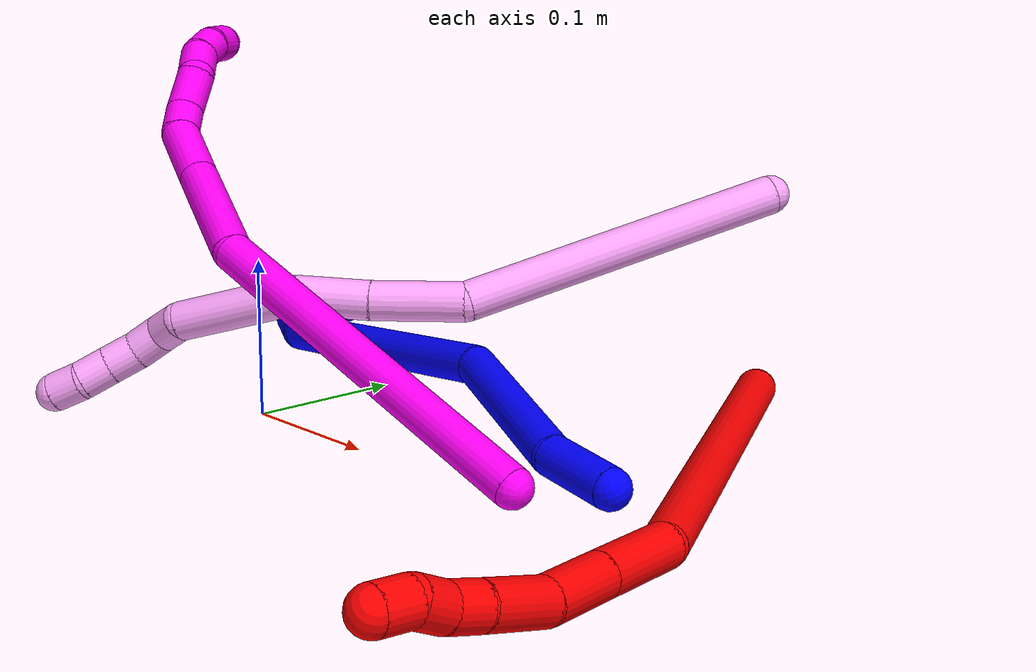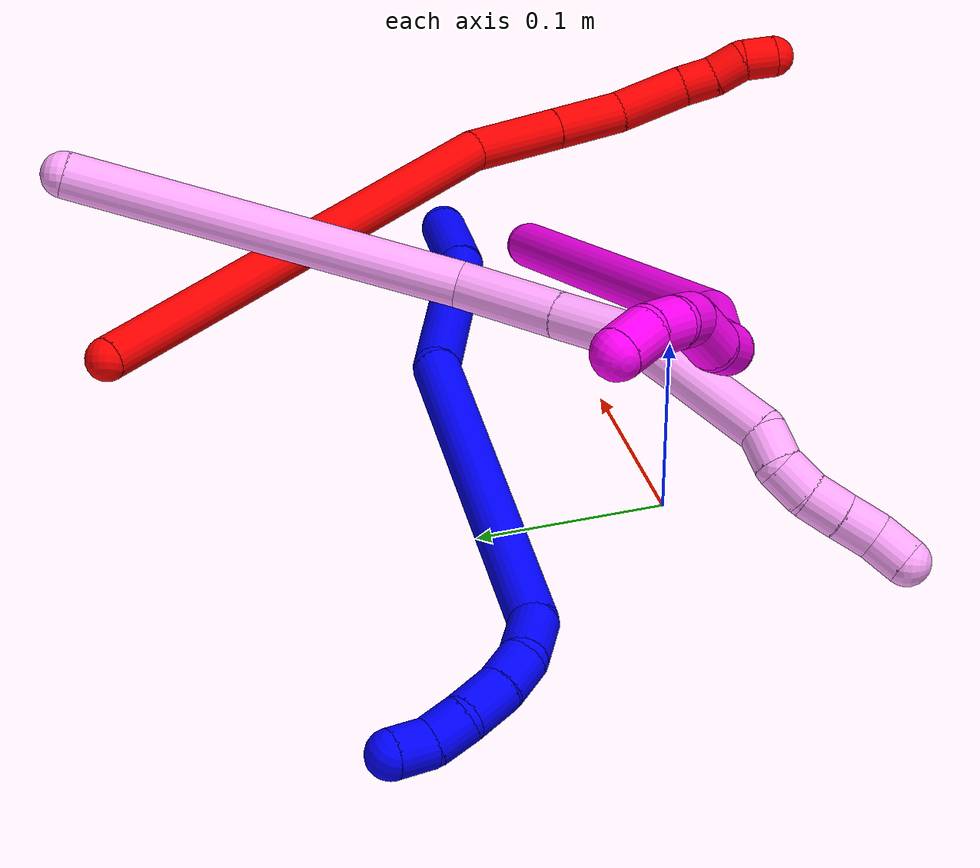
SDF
<sdf version="1.7">
 <world name="default">
  <model name="1">
   <static>0</static>
   <link name="1">
    <collision name="collision-cylinder-e_1_1_4">
     <pose>-0.024528 0.004065 0.005872 -0.605521 -1.28746 0.460457</pose>
     <geometry><cylinder><radius>0.0125</radius><length>0.051093</length></cylinder></geometry>
     <surface>
      <friction><ode><mu>1.16</mu><mu2>1.16</mu2><slip1>0</slip1><slip2>0</slip2></ode></friction>
      <contact><ode><kp>1e+06</kp><kd>1</kd><max_vel>0</max_vel><min_depth>0.001</min_depth></ode></contact>
     </surface>
    </collision>
    <visual name="visual-cylinder-e_1_1_4">
     <pose>-0.024528 0.004065 0.005872 -0.605521 -1.28746 0.460457</pose>
     <geometry><cylinder><radius>0.0125</radius><length>0.051093</length></cylinder></geometry>
     <material><ambient>0 0 1 1</ambient></material>
    </visual>
    <collision name="collision-cylinder-e_2_4_5">
     <pose>-0.107501 0.037127 0.022198 -1.22479 -1.08546 0.801551</pose>
     <geometry><cylinder><radius>0.0125</radius><length>0.13215</length></cylinder></geometry>
     <surface>
      <friction><ode><mu>1.16</mu><mu2>1.16</mu2><slip1>0</slip1><slip2>0</slip2></ode></friction>
      <contact><ode><kp>1e+06</kp><kd>1</kd><max_vel>0</max_vel><min_depth>0.001</min_depth></ode></contact>
     </surface>
    </collision>
    <visual name="visual-cylinder-e_2_4_5">
     <pose>-0.107501 0.037127 0.022198 -1.22479 -1.08546 0.801551</pose>
     <geometry><cylinder><radius>0.0125</radius><length>0.13215</length></cylinder></geometry>
     <material><ambient>0 0 1 1</ambient></material>
    </visual>
    <collision name="collision-cylinder-e_3_5_6">
     <pose>-0.264787 0.071757 0.03803 -0.80844 -1.49217 0.753068</pose>
     <geometry><cylinder><radius>0.0125</radius><length>0.198295</length></cylinder></geometry>
     <surface>
      <friction><ode><mu>1.16</mu><mu2>1.16</mu2><slip1>0</slip1><slip2>0</slip2></ode></friction>
      <contact><ode><kp>1e+06</kp><kd>1</kd><max_vel>0</max_vel><min_depth>0.001</min_depth></ode></contact>
     </surface>
    </collision>
    <visual name="visual-cylinder-e_3_5_6">
     <pose>-0.264787 0.071757 0.03803 -0.80844 -1.49217 0.753068</pose>
     <geometry><cylinder><radius>0.0125</radius><length>0.198295</length></cylinder></geometry>
     <material><ambient>0 0 1 1</ambient></material>
    </visual>
    <collision name="collision-cylinder-e_4_6_7">
     <pose>-0.377422 0.085374 0.044812 -1.39671 -1.03943 0.895587</pose>
     <geometry><cylinder><radius>0.0125</radius><length>0.032001</length></cylinder></geometry>
     <surface>
      <friction><ode><mu>1.16</mu><mu2>1.16</mu2><slip1>0</slip1><slip2>0</slip2></ode></friction>
      <contact><ode><kp>1e+06</kp><kd>1</kd><max_vel>0</max_vel><min_depth>0.001</min_depth></ode></contact>
     </surface>
    </collision>
    <visual name="visual-cylinder-e_4_6_7">
     <pose>-0.377422 0.085374 0.044812 -1.39671 -1.03943 0.895587</pose>
     <geometry><cylinder><radius>0.0125</radius><length>0.032001</length></cylinder></geometry>
     <material><ambient>0 0 1 1</ambient></material>
    </visual>
    <collision name="collision-cylinder-e_5_7_8">
     <pose>-0.398178 0.100509 0.043163 -1.9744 -0.730211 1.04948</pose>
     <geometry><cylinder><radius>0.0125</radius><length>0.020873</length></cylinder></geometry>
     <surface>
      <friction><ode><mu>1.16</mu><mu2>1.16</mu2><slip1>0</slip1><slip2>0</slip2></ode></friction>
      <contact><ode><kp>1e+06</kp><kd>1</kd><max_vel>0</max_vel><min_depth>0.001</min_depth></ode></contact>
     </surface>
    </collision>
    <visual name="visual-cylinder-e_5_7_8">
     <pose>-0.398178 0.100509 0.043163 -1.9744 -0.730211 1.04948</pose>
     <geometry><cylinder><radius>0.0125</radius><length>0.020873</length></cylinder></geometry>
     <material><ambient>0 0 1 1</ambient></material>
    </visual>
    <collision name="collision-cylinder-e_6_8_9">
     <pose>-0.411932 0.117895 0.036889 -1.87557 -0.564379 0.752612</pose>
     <geometry><cylinder><radius>0.0125</radius><length>0.025399</length></cylinder></geometry>
     <surface>
      <friction><ode><mu>1.16</mu><mu2>1.16</mu2><slip1>0</slip1><slip2>0</slip2></ode></friction>
      <contact><ode><kp>1e+06</kp><kd>1</kd><max_vel>0</max_vel><min_depth>0.001</min_depth></ode></contact>
     </surface>
    </collision>
    <visual name="visual-cylinder-e_6_8_9">
     <pose>-0.411932 0.117895 0.036889 -1.87557 -0.564379 0.752612</pose>
     <geometry><cylinder><radius>0.0125</radius><length>0.025399</length></cylinder></geometry>
     <material><ambient>0 0 1 1</ambient></material>
    </visual>
    <collision name="collision-cylinder-e_7_9_10">
     <pose>-0.422207 0.136167 0.02875 -2.12013 -0.353987 0.617991</pose>
     <geometry><cylinder><radius>0.0125</radius><length>0.020089</length></cylinder></geometry>
     <surface>
      <friction><ode><mu>1.16</mu><mu2>1.16</mu2><slip1>0</slip1><slip2>0</slip2></ode></friction>
      <contact><ode><kp>1e+06</kp><kd>1</kd><max_vel>0</max_vel><min_depth>0.001</min_depth></ode></contact>
     </surface>
    </collision>
    <visual name="visual-cylinder-e_7_9_10">
     <pose>-0.422207 0.136167 0.02875 -2.12013 -0.353987 0.617991</pose>
     <geometry><cylinder><radius>0.0125</radius><length>0.020089</length></cylinder></geometry>
     <material><ambient>0 0 1 1</ambient></material>
    </visual>
    <collision name="collision-cylinder-e_8_10_2">
     <pose>-0.427539 0.153822 0.021586 -1.80005 -0.185177 0.232974</pose>
     <geometry><cylinder><radius>0.0125</radius><length>0.0201</length></cylinder></geometry>
     <surface>
      <friction><ode><mu>1.16</mu><mu2>1.16</mu2><slip1>0</slip1><slip2>0</slip2></ode></friction>
      <contact><ode><kp>1e+06</kp><kd>1</kd><max_vel>0</max_vel><min_depth>0.001</min_depth></ode></contact>
     </surface>
    </collision>
    <visual name="visual-cylinder-e_8_10_2">
     <pose>-0.427539 0.153822 0.021586 -1.80005 -0.185177 0.232974</pose>
     <geometry><cylinder><radius>0.0125</radius><length>0.0201</length></cylinder></geometry>
     <material><ambient>0 0 1 1</ambient></material>
    </visual>
    <collision name="collision-sphere-2">
     <pose>-0.429389 0.163442 0.019341 0 -0 0</pose>
     <geometry><sphere><radius>0.0125</radius></sphere></geometry>
     <surface>
      <friction><ode><mu>1.16</mu><mu2>1.16</mu2><slip1>0</slip1><slip2>0</slip2></ode></friction>
      <contact><ode><kp>1e+06</kp><kd>1</kd><max_vel>0</max_vel><min_depth>0.001</min_depth></ode></contact>
     </surface>
    </collision>
    <visual name="visual-sphere-2">
     <pose>-0.429389 0.163442 0.019341 0 -0 0</pose>
     <geometry><sphere><radius>0.0125</radius></sphere></geometry>
     <material><ambient>0 0 1 1</ambient></material>
    </visual>
    <collision name="collision-sphere-10">
     <pose>-0.425688 0.144202 0.023831 0 -0 0</pose>
     <geometry><sphere><radius>0.0125</radius></sphere></geometry>
     <surface>
      <friction><ode><mu>1.16</mu><mu2>1.16</mu2><slip1>0</slip1><slip2>0</slip2></ode></friction>
      <contact><ode><kp>1e+06</kp><kd>1</kd><max_vel>0</max_vel><min_depth>0.001</min_depth></ode></contact>
     </surface>
    </collision>
    <visual name="visual-sphere-10">
     <pose>-0.425688 0.144202 0.023831 0 -0 0</pose>
     <geometry><sphere><radius>0.0125</radius></sphere></geometry>
     <material><ambient>0 0 1 1</ambient></material>
    </visual>
    <collision name="collision-sphere-9">
     <pose>-0.418725 0.128131 0.033669 0 -0 0</pose>
     <geometry><sphere><radius>0.0125</radius></sphere></geometry>
     <surface>
      <friction><ode><mu>1.16</mu><mu2>1.16</mu2><slip1>0</slip1><slip2>0</slip2></ode></friction>
      <contact><ode><kp>1e+06</kp><kd>1</kd><max_vel>0</max_vel><min_depth>0.001</min_depth></ode></contact>
     </surface>
    </collision>
    <visual name="visual-sphere-9">
     <pose>-0.418725 0.128131 0.033669 0 -0 0</pose>
     <geometry><sphere><radius>0.0125</radius></sphere></geometry>
     <material><ambient>0 0 1 1</ambient></material>
    </visual>
    <collision name="collision-sphere-4">
     <pose>-0.049056 0.00813 0.011744 0 -0 0</pose>
     <geometry><sphere><radius>0.0125</radius></sphere></geometry>
     <surface>
      <friction><ode><mu>1.16</mu><mu2>1.16</mu2><slip1>0</slip1><slip2>0</slip2></ode></friction>
      <contact><ode><kp>1e+06</kp><kd>1</kd><max_vel>0</max_vel><min_depth>0.001</min_depth></ode></contact>
     </surface>
    </collision>
    <visual name="visual-sphere-4">
     <pose>-0.049056 0.00813 0.011744 0 -0 0</pose>
     <geometry><sphere><radius>0.0125</radius></sphere></geometry>
     <material><ambient>0 0 1 1</ambient></material>
    </visual>
    <collision name="collision-sphere-1">
     <geometry><sphere><radius>0.0125</radius></sphere></geometry>
     <surface>
      <friction><ode><mu>1.16</mu><mu2>1.16</mu2><slip1>0</slip1><slip2>0</slip2></ode></friction>
      <contact><ode><kp>1e+06</kp><kd>1</kd><max_vel>0</max_vel><min_depth>0.001</min_depth></ode></contact>
     </surface>
    </collision>
    <visual name="visual-sphere-1">
     <geometry><sphere><radius>0.0125</radius></sphere></geometry>
     <material><ambient>0 0 1 1</ambient></material>
    </visual>
    <collision name="collision-sphere-8">
     <pose>-0.405139 0.10766 0.040109 0 -0 0</pose>
     <geometry><sphere><radius>0.0125</radius></sphere></geometry>
     <surface>
      <friction><ode><mu>1.16</mu><mu2>1.16</mu2><slip1>0</slip1><slip2>0</slip2></ode></friction>
      <contact><ode><kp>1e+06</kp><kd>1</kd><max_vel>0</max_vel><min_depth>0.001</min_depth></ode></contact>
     </surface>
    </collision>
    <visual name="visual-sphere-8">
     <pose>-0.405139 0.10766 0.040109 0 -0 0</pose>
     <geometry><sphere><radius>0.0125</radius></sphere></geometry>
     <material><ambient>0 0 1 1</ambient></material>
    </visual>
    <collision name="collision-sphere-5">
     <pose>-0.165945 0.066125 0.032652 0 -0 0</pose>
     <geometry><sphere><radius>0.0125</radius></sphere></geometry>
     <surface>
      <friction><ode><mu>1.16</mu><mu2>1.16</mu2><slip1>0</slip1><slip2>0</slip2></ode></friction>
      <contact><ode><kp>1e+06</kp><kd>1</kd><max_vel>0</max_vel><min_depth>0.001</min_depth></ode></contact>
     </surface>
    </collision>
    <visual name="visual-sphere-5">
     <pose>-0.165945 0.066125 0.032652 0 -0 0</pose>
     <geometry><sphere><radius>0.0125</radius></sphere></geometry>
     <material><ambient>0 0 1 1</ambient></material>
    </visual>
    <collision name="collision-sphere-6">
     <pose>-0.363628 0.077388 0.043408 0 -0 0</pose>
     <geometry><sphere><radius>0.0125</radius></sphere></geometry>
     <surface>
      <friction><ode><mu>1.16</mu><mu2>1.16</mu2><slip1>0</slip1><slip2>0</slip2></ode></friction>
      <contact><ode><kp>1e+06</kp><kd>1</kd><max_vel>0</max_vel><min_depth>0.001</min_depth></ode></contact>
     </surface>
    </collision>
    <visual name="visual-sphere-6">
     <pose>-0.363628 0.077388 0.043408 0 -0 0</pose>
     <geometry><sphere><radius>0.0125</radius></sphere></geometry>
     <material><ambient>0 0 1 1</ambient></material>
    </visual>
    <collision name="collision-sphere-7">
     <pose>-0.391216 0.093359 0.046216 0 -0 0</pose>
     <geometry><sphere><radius>0.0125</radius></sphere></geometry>
     <surface>
      <friction><ode><mu>1.16</mu><mu2>1.16</mu2><slip1>0</slip1><slip2>0</slip2></ode></friction>
      <contact><ode><kp>1e+06</kp><kd>1</kd><max_vel>0</max_vel><min_depth>0.001</min_depth></ode></contact>
     </surface>
    </collision>
    <visual name="visual-sphere-7">
     <pose>-0.391216 0.093359 0.046216 0 -0 0</pose>
     <geometry><sphere><radius>0.0125</radius></sphere></geometry>
     <material><ambient>0 0 1 1</ambient></material>
    </visual>
    <inertial>
     <pose>-0.231784 0.065989 0.030116 0 -0 0</pose>
     <mass>0.5</mass>
     <inertia>
      <ixx>0.000186</ixx>
      <ixy>0</ixy>
      <ixz>0</ixz>
      <iyy>0.000957</iyy>
      <iyz>0</iyz>
      <izz>0.000717</izz>
     </inertia>
    </inertial>
   </link>
   <pose>0.273592 0.037473 0.011493 0.313706 -0.156507 -0.006843</pose>
  </model>
  <model name="2">
   <static>0</static>
   <link name="2">
    <collision name="collision-cylinder-e_1_1_4">
     <pose>0.040929 -0.117416 0.081852 0.962009 0.278521 0.146044</pose>
     <geometry><cylinder><radius>0.0125</radius><length>0.297735</length></cylinder></geometry>
     <surface>
      <friction><ode><mu>1.16</mu><mu2>1.16</mu2><slip1>0</slip1><slip2>0</slip2></ode></friction>
      <contact><ode><kp>1e+06</kp><kd>1</kd><max_vel>0</max_vel><min_depth>0.001</min_depth></ode></contact>
     </surface>
    </collision>
    <visual name="visual-cylinder-e_1_1_4">
     <pose>0.040929 -0.117416 0.081852 0.962009 0.278521 0.146044</pose>
     <geometry><cylinder><radius>0.0125</radius><length>0.297735</length></cylinder></geometry>
     <material><ambient>1 0 0 1</ambient></material>
    </visual>
    <collision name="collision-cylinder-e_2_4_5">
     <pose>0.081121 -0.260573 0.173646 1.20223 -0.02668 -0.018297</pose>
     <geometry><cylinder><radius>0.0125</radius><length>0.055209</length></cylinder></geometry>
     <surface>
      <friction><ode><mu>1.16</mu><mu2>1.16</mu2><slip1>0</slip1><slip2>0</slip2></ode></friction>
      <contact><ode><kp>1e+06</kp><kd>1</kd><max_vel>0</max_vel><min_depth>0.001</min_depth></ode></contact>
     </surface>
    </collision>
    <visual name="visual-cylinder-e_2_4_5">
     <pose>0.081121 -0.260573 0.173646 1.20223 -0.02668 -0.018297</pose>
     <geometry><cylinder><radius>0.0125</radius><length>0.055209</length></cylinder></geometry>
     <material><ambient>1 0 0 1</ambient></material>
    </visual>
    <collision name="collision-cylinder-e_3_5_6">
     <pose>0.079897 -0.306583 0.191466 1.20008 -0.022413 -0.015335</pose>
     <geometry><cylinder><radius>0.0125</radius><length>0.043501</length></cylinder></geometry>
     <surface>
      <friction><ode><mu>1.16</mu><mu2>1.16</mu2><slip1>0</slip1><slip2>0</slip2></ode></friction>
      <contact><ode><kp>1e+06</kp><kd>1</kd><max_vel>0</max_vel><min_depth>0.001</min_depth></ode></contact>
     </surface>
    </collision>
    <visual name="visual-cylinder-e_3_5_6">
     <pose>0.079897 -0.306583 0.191466 1.20008 -0.022413 -0.015335</pose>
     <geometry><cylinder><radius>0.0125</radius><length>0.043501</length></cylinder></geometry>
     <material><ambient>1 0 0 1</ambient></material>
    </visual>
    <collision name="collision-cylinder-e_4_6_7">
     <pose>0.07418 -0.345358 0.208826 1.09733 -0.246356 -0.151068</pose>
     <geometry><cylinder><radius>0.0125</radius><length>0.042885</length></cylinder></geometry>
     <surface>
      <friction><ode><mu>1.16</mu><mu2>1.16</mu2><slip1>0</slip1><slip2>0</slip2></ode></friction>
      <contact><ode><kp>1e+06</kp><kd>1</kd><max_vel>0</max_vel><min_depth>0.001</min_depth></ode></contact>
     </surface>
    </collision>
    <visual name="visual-cylinder-e_4_6_7">
     <pose>0.07418 -0.345358 0.208826 1.09733 -0.246356 -0.151068</pose>
     <geometry><cylinder><radius>0.0125</radius><length>0.042885</length></cylinder></geometry>
     <material><ambient>1 0 0 1</ambient></material>
    </visual>
    <collision name="collision-cylinder-e_5_7_8">
     <pose>0.065674 -0.372817 0.221859 1.1931 -0.328 -0.22382</pose>
     <geometry><cylinder><radius>0.0125</radius><length>0.020345</length></cylinder></geometry>
     <surface>
      <friction><ode><mu>1.16</mu><mu2>1.16</mu2><slip1>0</slip1><slip2>0</slip2></ode></friction>
      <contact><ode><kp>1e+06</kp><kd>1</kd><max_vel>0</max_vel><min_depth>0.001</min_depth></ode></contact>
     </surface>
    </collision>
    <visual name="visual-cylinder-e_5_7_8">
     <pose>0.065674 -0.372817 0.221859 1.1931 -0.328 -0.22382</pose>
     <geometry><cylinder><radius>0.0125</radius><length>0.020345</length></cylinder></geometry>
     <material><ambient>1 0 0 1</ambient></material>
    </visual>
    <collision name="collision-cylinder-e_6_8_9">
     <pose>0.058551 -0.389397 0.23069 0.965441 -0.393009 -0.207906</pose>
     <geometry><cylinder><radius>0.0125</radius><length>0.020087</length></cylinder></geometry>
     <surface>
      <friction><ode><mu>1.16</mu><mu2>1.16</mu2><slip1>0</slip1><slip2>0</slip2></ode></friction>
      <contact><ode><kp>1e+06</kp><kd>1</kd><max_vel>0</max_vel><min_depth>0.001</min_depth></ode></contact>
     </surface>
    </collision>
    <visual name="visual-cylinder-e_6_8_9">
     <pose>0.058551 -0.389397 0.23069 0.965441 -0.393009 -0.207906</pose>
     <geometry><cylinder><radius>0.0125</radius><length>0.020087</length></cylinder></geometry>
     <material><ambient>1 0 0 1</ambient></material>
    </visual>
    <collision name="collision-cylinder-e_7_9_2">
     <pose>0.052595 -0.406689 0.238114 1.35238 -0.209983 -0.168707</pose>
     <geometry><cylinder><radius>0.0125</radius><length>0.020239</length></cylinder></geometry>
     <surface>
      <friction><ode><mu>1.16</mu><mu2>1.16</mu2><slip1>0</slip1><slip2>0</slip2></ode></friction>
      <contact><ode><kp>1e+06</kp><kd>1</kd><max_vel>0</max_vel><min_depth>0.001</min_depth></ode></contact>
     </surface>
    </collision>
    <visual name="visual-cylinder-e_7_9_2">
     <pose>0.052595 -0.406689 0.238114 1.35238 -0.209983 -0.168707</pose>
     <geometry><cylinder><radius>0.0125</radius><length>0.020239</length></cylinder></geometry>
     <material><ambient>1 0 0 1</ambient></material>
    </visual>
    <collision name="collision-sphere-2">
     <pose>0.050486 -0.416351 0.240258 0 -0 0</pose>
     <geometry><sphere><radius>0.0125</radius></sphere></geometry>
     <surface>
      <friction><ode><mu>1.16</mu><mu2>1.16</mu2><slip1>0</slip1><slip2>0</slip2></ode></friction>
      <contact><ode><kp>1e+06</kp><kd>1</kd><max_vel>0</max_vel><min_depth>0.001</min_depth></ode></contact>
     </surface>
    </collision>
    <visual name="visual-sphere-2">
     <pose>0.050486 -0.416351 0.240258 0 -0 0</pose>
     <geometry><sphere><radius>0.0125</radius></sphere></geometry>
     <material><ambient>1 0 0 1</ambient></material>
    </visual>
    <collision name="collision-sphere-9">
     <pose>0.054704 -0.397027 0.235969 0 -0 0</pose>
     <geometry><sphere><radius>0.0125</radius></sphere></geometry>
     <surface>
      <friction><ode><mu>1.16</mu><mu2>1.16</mu2><slip1>0</slip1><slip2>0</slip2></ode></friction>
      <contact><ode><kp>1e+06</kp><kd>1</kd><max_vel>0</max_vel><min_depth>0.001</min_depth></ode></contact>
     </surface>
    </collision>
    <visual name="visual-sphere-9">
     <pose>0.054704 -0.397027 0.235969 0 -0 0</pose>
     <geometry><sphere><radius>0.0125</radius></sphere></geometry>
     <material><ambient>1 0 0 1</ambient></material>
    </visual>
    <collision name="collision-sphere-4">
     <pose>0.081857 -0.234832 0.163705 0 -0 0</pose>
     <geometry><sphere><radius>0.0125</radius></sphere></geometry>
     <surface>
      <friction><ode><mu>1.16</mu><mu2>1.16</mu2><slip1>0</slip1><slip2>0</slip2></ode></friction>
      <contact><ode><kp>1e+06</kp><kd>1</kd><max_vel>0</max_vel><min_depth>0.001</min_depth></ode></contact>
     </surface>
    </collision>
    <visual name="visual-sphere-4">
     <pose>0.081857 -0.234832 0.163705 0 -0 0</pose>
     <geometry><sphere><radius>0.0125</radius></sphere></geometry>
     <material><ambient>1 0 0 1</ambient></material>
    </visual>
    <collision name="collision-sphere-1">
     <geometry><sphere><radius>0.0125</radius></sphere></geometry>
     <surface>
      <friction><ode><mu>1.16</mu><mu2>1.16</mu2><slip1>0</slip1><slip2>0</slip2></ode></friction>
      <contact><ode><kp>1e+06</kp><kd>1</kd><max_vel>0</max_vel><min_depth>0.001</min_depth></ode></contact>
     </surface>
    </collision>
    <visual name="visual-sphere-1">
     <geometry><sphere><radius>0.0125</radius></sphere></geometry>
     <material><ambient>1 0 0 1</ambient></material>
    </visual>
    <collision name="collision-sphere-8">
     <pose>0.062397 -0.381768 0.22541 0 -0 0</pose>
     <geometry><sphere><radius>0.0125</radius></sphere></geometry>
     <surface>
      <friction><ode><mu>1.16</mu><mu2>1.16</mu2><slip1>0</slip1><slip2>0</slip2></ode></friction>
      <contact><ode><kp>1e+06</kp><kd>1</kd><max_vel>0</max_vel><min_depth>0.001</min_depth></ode></contact>
     </surface>
    </collision>
    <visual name="visual-sphere-8">
     <pose>0.062397 -0.381768 0.22541 0 -0 0</pose>
     <geometry><sphere><radius>0.0125</radius></sphere></geometry>
     <material><ambient>1 0 0 1</ambient></material>
    </visual>
    <collision name="collision-sphere-5">
     <pose>0.080384 -0.286315 0.183588 0 -0 0</pose>
     <geometry><sphere><radius>0.0125</radius></sphere></geometry>
     <surface>
      <friction><ode><mu>1.16</mu><mu2>1.16</mu2><slip1>0</slip1><slip2>0</slip2></ode></friction>
      <contact><ode><kp>1e+06</kp><kd>1</kd><max_vel>0</max_vel><min_depth>0.001</min_depth></ode></contact>
     </surface>
    </collision>
    <visual name="visual-sphere-5">
     <pose>0.080384 -0.286315 0.183588 0 -0 0</pose>
     <geometry><sphere><radius>0.0125</radius></sphere></geometry>
     <material><ambient>1 0 0 1</ambient></material>
    </visual>
    <collision name="collision-sphere-6">
     <pose>0.07941 -0.326851 0.199344 0 -0 0</pose>
     <geometry><sphere><radius>0.0125</radius></sphere></geometry>
     <surface>
      <friction><ode><mu>1.16</mu><mu2>1.16</mu2><slip1>0</slip1><slip2>0</slip2></ode></friction>
      <contact><ode><kp>1e+06</kp><kd>1</kd><max_vel>0</max_vel><min_depth>0.001</min_depth></ode></contact>
     </surface>
    </collision>
    <visual name="visual-sphere-6">
     <pose>0.07941 -0.326851 0.199344 0 -0 0</pose>
     <geometry><sphere><radius>0.0125</radius></sphere></geometry>
     <material><ambient>1 0 0 1</ambient></material>
    </visual>
    <collision name="collision-sphere-7">
     <pose>0.068951 -0.363865 0.218308 0 -0 0</pose>
     <geometry><sphere><radius>0.0125</radius></sphere></geometry>
     <surface>
      <friction><ode><mu>1.16</mu><mu2>1.16</mu2><slip1>0</slip1><slip2>0</slip2></ode></friction>
      <contact><ode><kp>1e+06</kp><kd>1</kd><max_vel>0</max_vel><min_depth>0.001</min_depth></ode></contact>
     </surface>
    </collision>
    <visual name="visual-sphere-7">
     <pose>0.068951 -0.363865 0.218308 0 -0 0</pose>
     <geometry><sphere><radius>0.0125</radius></sphere></geometry>
     <material><ambient>1 0 0 1</ambient></material>
    </visual>
    <inertial>
     <pose>0.053796 -0.202259 0.130416 0 -0 0</pose>
     <mass>0.5</mass>
     <inertia>
      <ixx>0.002451</ixx>
      <ixy>0</ixy>
      <ixz>0</ixz>
      <iyy>0.001613</iyy>
      <iyz>0</iyz>
      <izz>0.001193</izz>
     </inertia>
    </inertial>
   </link>
   <pose>0.196123 0.250231 0.011479 0.36717 0.696565 0.183422</pose>
  </model>
  <model name="4">
   <static>0</static>
   <link name="4">
    <collision name="collision-cylinder-e_1_1_4">
     <pose>-0.028613 0.010473 -0.102244 -3.03952 -0.271518 2.4259</pose>
     <geometry><cylinder><radius>0.0125</radius><length>0.213375</length></cylinder></geometry>
     <surface>
      <friction><ode><mu>1.16</mu><mu2>1.16</mu2><slip1>0</slip1><slip2>0</slip2></ode></friction>
      <contact><ode><kp>1e+06</kp><kd>1</kd><max_vel>0</max_vel><min_depth>0.001</min_depth></ode></contact>
     </surface>
    </collision>
    <visual name="visual-cylinder-e_1_1_4">
     <pose>-0.028613 0.010473 -0.102244 -3.03952 -0.271518 2.4259</pose>
     <geometry><cylinder><radius>0.0125</radius><length>0.213375</length></cylinder></geometry>
     <material><ambient>1 0.65098 0.996078 1</ambient></material>
    </visual>
    <collision name="collision-cylinder-e_2_4_5">
     <pose>-0.056627 0.012631 -0.23256 2.85364 0.020458 0.140881</pose>
     <geometry><cylinder><radius>0.0125</radius><length>0.058568</length></cylinder></geometry>
     <surface>
      <friction><ode><mu>1.16</mu><mu2>1.16</mu2><slip1>0</slip1><slip2>0</slip2></ode></friction>
      <contact><ode><kp>1e+06</kp><kd>1</kd><max_vel>0</max_vel><min_depth>0.001</min_depth></ode></contact>
     </surface>
    </collision>
    <visual name="visual-cylinder-e_2_4_5">
     <pose>-0.056627 0.012631 -0.23256 2.85364 0.020458 0.140881</pose>
     <geometry><cylinder><radius>0.0125</radius><length>0.058568</length></cylinder></geometry>
     <material><ambient>1 0.65098 0.996078 1</ambient></material>
    </visual>
    <collision name="collision-cylinder-e_3_5_6">
     <pose>-0.054337 -0.003419 -0.282972 2.80825 0.0714 0.418382</pose>
     <geometry><cylinder><radius>0.0125</radius><length>0.047402</length></cylinder></geometry>
     <surface>
      <friction><ode><mu>1.16</mu><mu2>1.16</mu2><slip1>0</slip1><slip2>0</slip2></ode></friction>
      <contact><ode><kp>1e+06</kp><kd>1</kd><max_vel>0</max_vel><min_depth>0.001</min_depth></ode></contact>
     </surface>
    </collision>
    <visual name="visual-cylinder-e_3_5_6">
     <pose>-0.054337 -0.003419 -0.282972 2.80825 0.0714 0.418382</pose>
     <geometry><cylinder><radius>0.0125</radius><length>0.047402</length></cylinder></geometry>
     <material><ambient>1 0.65098 0.996078 1</ambient></material>
    </visual>
    <collision name="collision-cylinder-e_4_6_7">
     <pose>-0.061808 -0.029589 -0.339894 2.65185 -0.229653 -0.864824</pose>
     <geometry><cylinder><radius>0.0125</radius><length>0.080492</length></cylinder></geometry>
     <surface>
      <friction><ode><mu>1.16</mu><mu2>1.16</mu2><slip1>0</slip1><slip2>0</slip2></ode></friction>
      <contact><ode><kp>1e+06</kp><kd>1</kd><max_vel>0</max_vel><min_depth>0.001</min_depth></ode></contact>
     </surface>
    </collision>
    <visual name="visual-cylinder-e_4_6_7">
     <pose>-0.061808 -0.029589 -0.339894 2.65185 -0.229653 -0.864824</pose>
     <geometry><cylinder><radius>0.0125</radius><length>0.080492</length></cylinder></geometry>
     <material><ambient>1 0.65098 0.996078 1</ambient></material>
    </visual>
    <collision name="collision-cylinder-e_5_7_8">
     <pose>-0.0755 -0.055123 -0.379924 2.22528 -0.468709 -0.90171</pose>
     <geometry><cylinder><radius>0.0125</radius><length>0.02006</length></cylinder></geometry>
     <surface>
      <friction><ode><mu>1.16</mu><mu2>1.16</mu2><slip1>0</slip1><slip2>0</slip2></ode></friction>
      <contact><ode><kp>1e+06</kp><kd>1</kd><max_vel>0</max_vel><min_depth>0.001</min_depth></ode></contact>
     </surface>
    </collision>
    <visual name="visual-cylinder-e_5_7_8">
     <pose>-0.0755 -0.055123 -0.379924 2.22528 -0.468709 -0.90171</pose>
     <geometry><cylinder><radius>0.0125</radius><length>0.02006</length></cylinder></geometry>
     <material><ambient>1 0.65098 0.996078 1</ambient></material>
    </visual>
    <collision name="collision-cylinder-e_6_8_9">
     <pose>-0.085599 -0.065079 -0.393194 2.79149 -0.589323 -2.08632</pose>
     <geometry><cylinder><radius>0.0125</radius><length>0.020035</length></cylinder></geometry>
     <surface>
      <friction><ode><mu>1.16</mu><mu2>1.16</mu2><slip1>0</slip1><slip2>0</slip2></ode></friction>
      <contact><ode><kp>1e+06</kp><kd>1</kd><max_vel>0</max_vel><min_depth>0.001</min_depth></ode></contact>
     </surface>
    </collision>
    <visual name="visual-cylinder-e_6_8_9">
     <pose>-0.085599 -0.065079 -0.393194 2.79149 -0.589323 -2.08632</pose>
     <geometry><cylinder><radius>0.0125</radius><length>0.020035</length></cylinder></geometry>
     <material><ambient>1 0.65098 0.996078 1</ambient></material>
    </visual>
    <collision name="collision-cylinder-e_7_9_10">
     <pose>-0.095752 -0.069155 -0.409825 3.004 -0.476122 -2.58825</pose>
     <geometry><cylinder><radius>0.0125</radius><length>0.02001</length></cylinder></geometry>
     <surface>
      <friction><ode><mu>1.16</mu><mu2>1.16</mu2><slip1>0</slip1><slip2>0</slip2></ode></friction>
      <contact><ode><kp>1e+06</kp><kd>1</kd><max_vel>0</max_vel><min_depth>0.001</min_depth></ode></contact>
     </surface>
    </collision>
    <visual name="visual-cylinder-e_7_9_10">
     <pose>-0.095752 -0.069155 -0.409825 3.004 -0.476122 -2.58825</pose>
     <geometry><cylinder><radius>0.0125</radius><length>0.02001</length></cylinder></geometry>
     <material><ambient>1 0.65098 0.996078 1</ambient></material>
    </visual>
    <collision name="collision-cylinder-e_8_10_11">
     <pose>-0.104966 -0.071157 -0.427484 3.0534 -0.480196 -2.78495</pose>
     <geometry><cylinder><radius>0.0125</radius><length>0.020038</length></cylinder></geometry>
     <surface>
      <friction><ode><mu>1.16</mu><mu2>1.16</mu2><slip1>0</slip1><slip2>0</slip2></ode></friction>
      <contact><ode><kp>1e+06</kp><kd>1</kd><max_vel>0</max_vel><min_depth>0.001</min_depth></ode></contact>
     </surface>
    </collision>
    <visual name="visual-cylinder-e_8_10_11">
     <pose>-0.104966 -0.071157 -0.427484 3.0534 -0.480196 -2.78495</pose>
     <geometry><cylinder><radius>0.0125</radius><length>0.020038</length></cylinder></geometry>
     <material><ambient>1 0.65098 0.996078 1</ambient></material>
    </visual>
    <collision name="collision-cylinder-e_9_11_2">
     <pose>-0.113522 -0.075464 -0.444842 2.74877 -0.403209 -1.5976</pose>
     <geometry><cylinder><radius>0.0125</radius><length>0.02002</length></cylinder></geometry>
     <surface>
      <friction><ode><mu>1.16</mu><mu2>1.16</mu2><slip1>0</slip1><slip2>0</slip2></ode></friction>
      <contact><ode><kp>1e+06</kp><kd>1</kd><max_vel>0</max_vel><min_depth>0.001</min_depth></ode></contact>
     </surface>
    </collision>
    <visual name="visual-cylinder-e_9_11_2">
     <pose>-0.113522 -0.075464 -0.444842 2.74877 -0.403209 -1.5976</pose>
     <geometry><cylinder><radius>0.0125</radius><length>0.02002</length></cylinder></geometry>
     <material><ambient>1 0.65098 0.996078 1</ambient></material>
    </visual>
    <collision name="collision-sphere-2">
     <pose>-0.11745 -0.078989 -0.453348 0 -0 0</pose>
     <geometry><sphere><radius>0.0125</radius></sphere></geometry>
     <surface>
      <friction><ode><mu>1.16</mu><mu2>1.16</mu2><slip1>0</slip1><slip2>0</slip2></ode></friction>
      <contact><ode><kp>1e+06</kp><kd>1</kd><max_vel>0</max_vel><min_depth>0.001</min_depth></ode></contact>
     </surface>
    </collision>
    <visual name="visual-sphere-2">
     <pose>-0.11745 -0.078989 -0.453348 0 -0 0</pose>
     <geometry><sphere><radius>0.0125</radius></sphere></geometry>
     <material><ambient>1 0.65098 0.996078 1</ambient></material>
    </visual>
    <collision name="collision-sphere-11">
     <pose>-0.109594 -0.07194 -0.436335 0 -0 0</pose>
     <geometry><sphere><radius>0.0125</radius></sphere></geometry>
     <surface>
      <friction><ode><mu>1.16</mu><mu2>1.16</mu2><slip1>0</slip1><slip2>0</slip2></ode></friction>
      <contact><ode><kp>1e+06</kp><kd>1</kd><max_vel>0</max_vel><min_depth>0.001</min_depth></ode></contact>
     </surface>
    </collision>
    <visual name="visual-sphere-11">
     <pose>-0.109594 -0.07194 -0.436335 0 -0 0</pose>
     <geometry><sphere><radius>0.0125</radius></sphere></geometry>
     <material><ambient>1 0.65098 0.996078 1</ambient></material>
    </visual>
    <collision name="collision-sphere-10">
     <pose>-0.100338 -0.070374 -0.418633 0 -0 0</pose>
     <geometry><sphere><radius>0.0125</radius></sphere></geometry>
     <surface>
      <friction><ode><mu>1.16</mu><mu2>1.16</mu2><slip1>0</slip1><slip2>0</slip2></ode></friction>
      <contact><ode><kp>1e+06</kp><kd>1</kd><max_vel>0</max_vel><min_depth>0.001</min_depth></ode></contact>
     </surface>
    </collision>
    <visual name="visual-sphere-10">
     <pose>-0.100338 -0.070374 -0.418633 0 -0 0</pose>
     <geometry><sphere><radius>0.0125</radius></sphere></geometry>
     <material><ambient>1 0.65098 0.996078 1</ambient></material>
    </visual>
    <collision name="collision-sphere-9">
     <pose>-0.091166 -0.067935 -0.401016 0 -0 0</pose>
     <geometry><sphere><radius>0.0125</radius></sphere></geometry>
     <surface>
      <friction><ode><mu>1.16</mu><mu2>1.16</mu2><slip1>0</slip1><slip2>0</slip2></ode></friction>
      <contact><ode><kp>1e+06</kp><kd>1</kd><max_vel>0</max_vel><min_depth>0.001</min_depth></ode></contact>
     </surface>
    </collision>
    <visual name="visual-sphere-9">
     <pose>-0.091166 -0.067935 -0.401016 0 -0 0</pose>
     <geometry><sphere><radius>0.0125</radius></sphere></geometry>
     <material><ambient>1 0.65098 0.996078 1</ambient></material>
    </visual>
    <collision name="collision-sphere-4">
     <pose>-0.057226 0.020946 -0.204488 0 -0 0</pose>
     <geometry><sphere><radius>0.0125</radius></sphere></geometry>
     <surface>
      <friction><ode><mu>1.16</mu><mu2>1.16</mu2><slip1>0</slip1><slip2>0</slip2></ode></friction>
      <contact><ode><kp>1e+06</kp><kd>1</kd><max_vel>0</max_vel><min_depth>0.001</min_depth></ode></contact>
     </surface>
    </collision>
    <visual name="visual-sphere-4">
     <pose>-0.057226 0.020946 -0.204488 0 -0 0</pose>
     <geometry><sphere><radius>0.0125</radius></sphere></geometry>
     <material><ambient>1 0.65098 0.996078 1</ambient></material>
    </visual>
    <collision name="collision-sphere-1">
     <geometry><sphere><radius>0.0125</radius></sphere></geometry>
     <surface>
      <friction><ode><mu>1.16</mu><mu2>1.16</mu2><slip1>0</slip1><slip2>0</slip2></ode></friction>
      <contact><ode><kp>1e+06</kp><kd>1</kd><max_vel>0</max_vel><min_depth>0.001</min_depth></ode></contact>
     </surface>
    </collision>
    <visual name="visual-sphere-1">
     <geometry><sphere><radius>0.0125</radius></sphere></geometry>
     <material><ambient>1 0.65098 0.996078 1</ambient></material>
    </visual>
    <collision name="collision-sphere-8">
     <pose>-0.080031 -0.062222 -0.385371 0 -0 0</pose>
     <geometry><sphere><radius>0.0125</radius></sphere></geometry>
     <surface>
      <friction><ode><mu>1.16</mu><mu2>1.16</mu2><slip1>0</slip1><slip2>0</slip2></ode></friction>
      <contact><ode><kp>1e+06</kp><kd>1</kd><max_vel>0</max_vel><min_depth>0.001</min_depth></ode></contact>
     </surface>
    </collision>
    <visual name="visual-sphere-8">
     <pose>-0.080031 -0.062222 -0.385371 0 -0 0</pose>
     <geometry><sphere><radius>0.0125</radius></sphere></geometry>
     <material><ambient>1 0.65098 0.996078 1</ambient></material>
    </visual>
    <collision name="collision-sphere-5">
     <pose>-0.056028 0.004316 -0.260633 0 -0 0</pose>
     <geometry><sphere><radius>0.0125</radius></sphere></geometry>
     <surface>
      <friction><ode><mu>1.16</mu><mu2>1.16</mu2><slip1>0</slip1><slip2>0</slip2></ode></friction>
      <contact><ode><kp>1e+06</kp><kd>1</kd><max_vel>0</max_vel><min_depth>0.001</min_depth></ode></contact>
     </surface>
    </collision>
    <visual name="visual-sphere-5">
     <pose>-0.056028 0.004316 -0.260633 0 -0 0</pose>
     <geometry><sphere><radius>0.0125</radius></sphere></geometry>
     <material><ambient>1 0.65098 0.996078 1</ambient></material>
    </visual>
    <collision name="collision-sphere-6">
     <pose>-0.052646 -0.011155 -0.305311 0 -0 0</pose>
     <geometry><sphere><radius>0.0125</radius></sphere></geometry>
     <surface>
      <friction><ode><mu>1.16</mu><mu2>1.16</mu2><slip1>0</slip1><slip2>0</slip2></ode></friction>
      <contact><ode><kp>1e+06</kp><kd>1</kd><max_vel>0</max_vel><min_depth>0.001</min_depth></ode></contact>
     </surface>
    </collision>
    <visual name="visual-sphere-6">
     <pose>-0.052646 -0.011155 -0.305311 0 -0 0</pose>
     <geometry><sphere><radius>0.0125</radius></sphere></geometry>
     <material><ambient>1 0.65098 0.996078 1</ambient></material>
    </visual>
    <collision name="collision-sphere-7">
     <pose>-0.070969 -0.048024 -0.374477 0 -0 0</pose>
     <geometry><sphere><radius>0.0125</radius></sphere></geometry>
     <surface>
      <friction><ode><mu>1.16</mu><mu2>1.16</mu2><slip1>0</slip1><slip2>0</slip2></ode></friction>
      <contact><ode><kp>1e+06</kp><kd>1</kd><max_vel>0</max_vel><min_depth>0.001</min_depth></ode></contact>
     </surface>
    </collision>
    <visual name="visual-sphere-7">
     <pose>-0.070969 -0.048024 -0.374477 0 -0 0</pose>
     <geometry><sphere><radius>0.0125</radius></sphere></geometry>
     <material><ambient>1 0.65098 0.996078 1</ambient></material>
    </visual>
    <inertial>
     <pose>-0.052988 -0.012599 -0.234761 0 -0 0</pose>
     <mass>0.5</mass>
     <inertia>
      <ixx>-6.3e-05</ixx>
      <ixy>0</ixy>
      <ixz>0</ixz>
      <iyy>0.001061</iyy>
      <iyz>0</iyz>
      <izz>0.000149</izz>
     </inertia>
    </inertial>
   </link>
   <pose>0.188194 0.267157 0.135465 1.59685 -1.47865 2.60193</pose>
  </model>
  <model name="10">
   <static>0</static>
   <link name="10">
    <collision name="collision-cylinder-e_1_1_4">
     <pose>-0.016396 0.023615 0.123734 -0.188582 -0.129435 0.012258</pose>
     <geometry><cylinder><radius>0.0125</radius><length>0.25406</length></cylinder></geometry>
     <surface>
      <friction><ode><mu>1.16</mu><mu2>1.16</mu2><slip1>0</slip1><slip2>0</slip2></ode></friction>
      <contact><ode><kp>1e+06</kp><kd>1</kd><max_vel>0</max_vel><min_depth>0.001</min_depth></ode></contact>
     </surface>
    </collision>
    <visual name="visual-cylinder-e_1_1_4">
     <pose>-0.016396 0.023615 0.123734 -0.188582 -0.129435 0.012258</pose>
     <geometry><cylinder><radius>0.0125</radius><length>0.25406</length></cylinder></geometry>
     <material><ambient>1 0 0.964706 1</ambient></material>
    </visual>
    <collision name="collision-cylinder-e_2_4_5">
     <pose>-0.052228 0.048916 0.284705 -0.045268 -0.480636 0.011095</pose>
     <geometry><cylinder><radius>0.0125</radius><length>0.084076</length></cylinder></geometry>
     <surface>
      <friction><ode><mu>1.16</mu><mu2>1.16</mu2><slip1>0</slip1><slip2>0</slip2></ode></friction>
      <contact><ode><kp>1e+06</kp><kd>1</kd><max_vel>0</max_vel><min_depth>0.001</min_depth></ode></contact>
     </surface>
    </collision>
    <visual name="visual-cylinder-e_2_4_5">
     <pose>-0.052228 0.048916 0.284705 -0.045268 -0.480636 0.011095</pose>
     <geometry><cylinder><radius>0.0125</radius><length>0.084076</length></cylinder></geometry>
     <material><ambient>1 0 0.964706 1</ambient></material>
    </visual>
    <collision name="collision-cylinder-e_3_5_6">
     <pose>-0.082282 0.054268 0.341763 -0.182853 -0.484799 0.045331</pose>
     <geometry><cylinder><radius>0.0125</radius><length>0.045566</length></cylinder></geometry>
     <surface>
      <friction><ode><mu>1.16</mu><mu2>1.16</mu2><slip1>0</slip1><slip2>0</slip2></ode></friction>
      <contact><ode><kp>1e+06</kp><kd>1</kd><max_vel>0</max_vel><min_depth>0.001</min_depth></ode></contact>
     </surface>
    </collision>
    <visual name="visual-cylinder-e_3_5_6">
     <pose>-0.082282 0.054268 0.341763 -0.182853 -0.484799 0.045331</pose>
     <geometry><cylinder><radius>0.0125</radius><length>0.045566</length></cylinder></geometry>
     <material><ambient>1 0 0.964706 1</ambient></material>
    </visual>
    <collision name="collision-cylinder-e_4_6_7">
     <pose>-0.101454 0.05911 0.368326 -0.172749 -0.896146 0.083196</pose>
     <geometry><cylinder><radius>0.0125</radius><length>0.02191</length></cylinder></geometry>
     <surface>
      <friction><ode><mu>1.16</mu><mu2>1.16</mu2><slip1>0</slip1><slip2>0</slip2></ode></friction>
      <contact><ode><kp>1e+06</kp><kd>1</kd><max_vel>0</max_vel><min_depth>0.001</min_depth></ode></contact>
     </surface>
    </collision>
    <visual name="visual-cylinder-e_4_6_7">
     <pose>-0.101454 0.05911 0.368326 -0.172749 -0.896146 0.083196</pose>
     <geometry><cylinder><radius>0.0125</radius><length>0.02191</length></cylinder></geometry>
     <material><ambient>1 0 0.964706 1</ambient></material>
    </visual>
    <collision name="collision-cylinder-e_5_7_8">
     <pose>-0.122207 0.065239 0.380274 -0.76041 -1.03833 0.449064</pose>
     <geometry><cylinder><radius>0.0125</radius><length>0.028315</length></cylinder></geometry>
     <surface>
      <friction><ode><mu>1.16</mu><mu2>1.16</mu2><slip1>0</slip1><slip2>0</slip2></ode></friction>
      <contact><ode><kp>1e+06</kp><kd>1</kd><max_vel>0</max_vel><min_depth>0.001</min_depth></ode></contact>
     </surface>
    </collision>
    <visual name="visual-cylinder-e_5_7_8">
     <pose>-0.122207 0.065239 0.380274 -0.76041 -1.03833 0.449064</pose>
     <geometry><cylinder><radius>0.0125</radius><length>0.028315</length></cylinder></geometry>
     <material><ambient>1 0 0.964706 1</ambient></material>
    </visual>
    <collision name="collision-cylinder-e_6_8_9">
     <pose>-0.143433 0.069922 0.394065 0.031518 -0.810407 -0.01352</pose>
     <geometry><cylinder><radius>0.0125</radius><length>0.024921</length></cylinder></geometry>
     <surface>
      <friction><ode><mu>1.16</mu><mu2>1.16</mu2><slip1>0</slip1><slip2>0</slip2></ode></friction>
      <contact><ode><kp>1e+06</kp><kd>1</kd><max_vel>0</max_vel><min_depth>0.001</min_depth></ode></contact>
     </surface>
    </collision>
    <visual name="visual-cylinder-e_6_8_9">
     <pose>-0.143433 0.069922 0.394065 0.031518 -0.810407 -0.01352</pose>
     <geometry><cylinder><radius>0.0125</radius><length>0.024921</length></cylinder></geometry>
     <material><ambient>1 0 0.964706 1</ambient></material>
    </visual>
    <collision name="collision-cylinder-e_7_9_10">
     <pose>-0.161024 0.066913 0.407405 0.522387 -1.00075 -0.290258</pose>
     <geometry><cylinder><radius>0.0125</radius><length>0.02034</length></cylinder></geometry>
     <surface>
      <friction><ode><mu>1.16</mu><mu2>1.16</mu2><slip1>0</slip1><slip2>0</slip2></ode></friction>
      <contact><ode><kp>1e+06</kp><kd>1</kd><max_vel>0</max_vel><min_depth>0.001</min_depth></ode></contact>
     </surface>
    </collision>
    <visual name="visual-cylinder-e_7_9_10">
     <pose>-0.161024 0.066913 0.407405 0.522387 -1.00075 -0.290258</pose>
     <geometry><cylinder><radius>0.0125</radius><length>0.02034</length></cylinder></geometry>
     <material><ambient>1 0 0.964706 1</ambient></material>
    </visual>
    <collision name="collision-cylinder-e_8_10_2">
     <pose>-0.176886 0.058542 0.416985 0.862743 -0.777588 -0.37273</pose>
     <geometry><cylinder><radius>0.0125</radius><length>0.020812</length></cylinder></geometry>
     <surface>
      <friction><ode><mu>1.16</mu><mu2>1.16</mu2><slip1>0</slip1><slip2>0</slip2></ode></friction>
      <contact><ode><kp>1e+06</kp><kd>1</kd><max_vel>0</max_vel><min_depth>0.001</min_depth></ode></contact>
     </surface>
    </collision>
    <visual name="visual-cylinder-e_8_10_2">
     <pose>-0.176886 0.058542 0.416985 0.862743 -0.777588 -0.37273</pose>
     <geometry><cylinder><radius>0.0125</radius><length>0.020812</length></cylinder></geometry>
     <material><ambient>1 0 0.964706 1</ambient></material>
    </visual>
    <collision name="collision-sphere-2">
     <pose>-0.184187 0.052909 0.421807 0 -0 0</pose>
     <geometry><sphere><radius>0.0125</radius></sphere></geometry>
     <surface>
      <friction><ode><mu>1.16</mu><mu2>1.16</mu2><slip1>0</slip1><slip2>0</slip2></ode></friction>
      <contact><ode><kp>1e+06</kp><kd>1</kd><max_vel>0</max_vel><min_depth>0.001</min_depth></ode></contact>
     </surface>
    </collision>
    <visual name="visual-sphere-2">
     <pose>-0.184187 0.052909 0.421807 0 -0 0</pose>
     <geometry><sphere><radius>0.0125</radius></sphere></geometry>
     <material><ambient>1 0 0.964706 1</ambient></material>
    </visual>
    <collision name="collision-sphere-10">
     <pose>-0.169586 0.064175 0.412162 0 -0 0</pose>
     <geometry><sphere><radius>0.0125</radius></sphere></geometry>
     <surface>
      <friction><ode><mu>1.16</mu><mu2>1.16</mu2><slip1>0</slip1><slip2>0</slip2></ode></friction>
      <contact><ode><kp>1e+06</kp><kd>1</kd><max_vel>0</max_vel><min_depth>0.001</min_depth></ode></contact>
     </surface>
    </collision>
    <visual name="visual-sphere-10">
     <pose>-0.169586 0.064175 0.412162 0 -0 0</pose>
     <geometry><sphere><radius>0.0125</radius></sphere></geometry>
     <material><ambient>1 0 0.964706 1</ambient></material>
    </visual>
    <collision name="collision-sphere-9">
     <pose>-0.152462 0.069652 0.402649 0 -0 0</pose>
     <geometry><sphere><radius>0.0125</radius></sphere></geometry>
     <surface>
      <friction><ode><mu>1.16</mu><mu2>1.16</mu2><slip1>0</slip1><slip2>0</slip2></ode></friction>
      <contact><ode><kp>1e+06</kp><kd>1</kd><max_vel>0</max_vel><min_depth>0.001</min_depth></ode></contact>
     </surface>
    </collision>
    <visual name="visual-sphere-9">
     <pose>-0.152462 0.069652 0.402649 0 -0 0</pose>
     <geometry><sphere><radius>0.0125</radius></sphere></geometry>
     <material><ambient>1 0 0.964706 1</ambient></material>
    </visual>
    <collision name="collision-sphere-4">
     <pose>-0.032792 0.047229 0.247468 0 -0 0</pose>
     <geometry><sphere><radius>0.0125</radius></sphere></geometry>
     <surface>
      <friction><ode><mu>1.16</mu><mu2>1.16</mu2><slip1>0</slip1><slip2>0</slip2></ode></friction>
      <contact><ode><kp>1e+06</kp><kd>1</kd><max_vel>0</max_vel><min_depth>0.001</min_depth></ode></contact>
     </surface>
    </collision>
    <visual name="visual-sphere-4">
     <pose>-0.032792 0.047229 0.247468 0 -0 0</pose>
     <geometry><sphere><radius>0.0125</radius></sphere></geometry>
     <material><ambient>1 0 0.964706 1</ambient></material>
    </visual>
    <collision name="collision-sphere-1">
     <geometry><sphere><radius>0.0125</radius></sphere></geometry>
     <surface>
      <friction><ode><mu>1.16</mu><mu2>1.16</mu2><slip1>0</slip1><slip2>0</slip2></ode></friction>
      <contact><ode><kp>1e+06</kp><kd>1</kd><max_vel>0</max_vel><min_depth>0.001</min_depth></ode></contact>
     </surface>
    </collision>
    <visual name="visual-sphere-1">
     <geometry><sphere><radius>0.0125</radius></sphere></geometry>
     <material><ambient>1 0 0.964706 1</ambient></material>
    </visual>
    <collision name="collision-sphere-8">
     <pose>-0.134405 0.070193 0.385482 0 -0 0</pose>
     <geometry><sphere><radius>0.0125</radius></sphere></geometry>
     <surface>
      <friction><ode><mu>1.16</mu><mu2>1.16</mu2><slip1>0</slip1><slip2>0</slip2></ode></friction>
      <contact><ode><kp>1e+06</kp><kd>1</kd><max_vel>0</max_vel><min_depth>0.001</min_depth></ode></contact>
     </surface>
    </collision>
    <visual name="visual-sphere-8">
     <pose>-0.134405 0.070193 0.385482 0 -0 0</pose>
     <geometry><sphere><radius>0.0125</radius></sphere></geometry>
     <material><ambient>1 0 0.964706 1</ambient></material>
    </visual>
    <collision name="collision-sphere-5">
     <pose>-0.071664 0.050603 0.321942 0 -0 0</pose>
     <geometry><sphere><radius>0.0125</radius></sphere></geometry>
     <surface>
      <friction><ode><mu>1.16</mu><mu2>1.16</mu2><slip1>0</slip1><slip2>0</slip2></ode></friction>
      <contact><ode><kp>1e+06</kp><kd>1</kd><max_vel>0</max_vel><min_depth>0.001</min_depth></ode></contact>
     </surface>
    </collision>
    <visual name="visual-sphere-5">
     <pose>-0.071664 0.050603 0.321942 0 -0 0</pose>
     <geometry><sphere><radius>0.0125</radius></sphere></geometry>
     <material><ambient>1 0 0.964706 1</ambient></material>
    </visual>
    <collision name="collision-sphere-6">
     <pose>-0.092899 0.057933 0.361585 0 -0 0</pose>
     <geometry><sphere><radius>0.0125</radius></sphere></geometry>
     <surface>
      <friction><ode><mu>1.16</mu><mu2>1.16</mu2><slip1>0</slip1><slip2>0</slip2></ode></friction>
      <contact><ode><kp>1e+06</kp><kd>1</kd><max_vel>0</max_vel><min_depth>0.001</min_depth></ode></contact>
     </surface>
    </collision>
    <visual name="visual-sphere-6">
     <pose>-0.092899 0.057933 0.361585 0 -0 0</pose>
     <geometry><sphere><radius>0.0125</radius></sphere></geometry>
     <material><ambient>1 0 0.964706 1</ambient></material>
    </visual>
    <collision name="collision-sphere-7">
     <pose>-0.110009 0.060286 0.375067 0 -0 0</pose>
     <geometry><sphere><radius>0.0125</radius></sphere></geometry>
     <surface>
      <friction><ode><mu>1.16</mu><mu2>1.16</mu2><slip1>0</slip1><slip2>0</slip2></ode></friction>
      <contact><ode><kp>1e+06</kp><kd>1</kd><max_vel>0</max_vel><min_depth>0.001</min_depth></ode></contact>
     </surface>
    </collision>
    <visual name="visual-sphere-7">
     <pose>-0.110009 0.060286 0.375067 0 -0 0</pose>
     <geometry><sphere><radius>0.0125</radius></sphere></geometry>
     <material><ambient>1 0 0.964706 1</ambient></material>
    </visual>
    <inertial>
     <pose>-0.057041 0.040098 0.233137 0 -0 0</pose>
     <mass>0.5</mass>
     <inertia>
      <ixx>0.001429</ixx>
      <ixy>0</ixy>
      <ixz>0</ixz>
      <iyy>0.001446</iyy>
      <iyz>0</iyz>
      <izz>-1.2e-05</izz>
     </inertia>
    </inertial>
   </link>
   <pose>0.239504 -0.003557 0.012944 1.38124 0.524517 -1.56476</pose>
  </model>
 </world>
</sdf>
